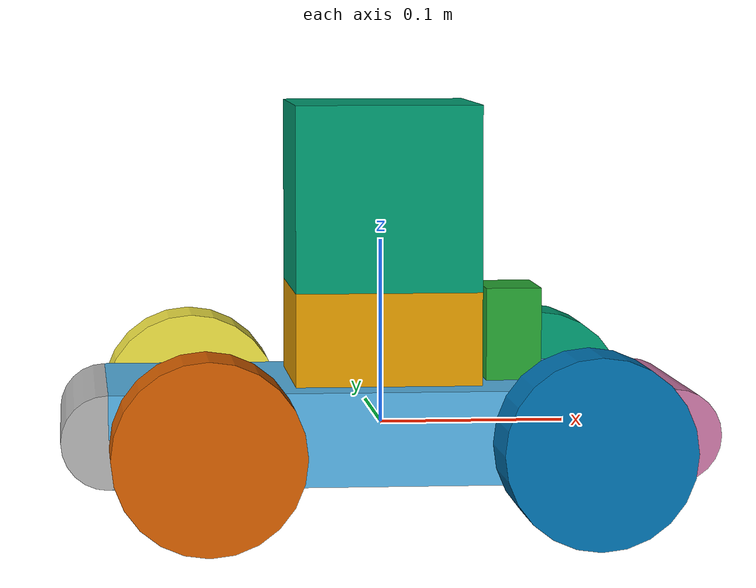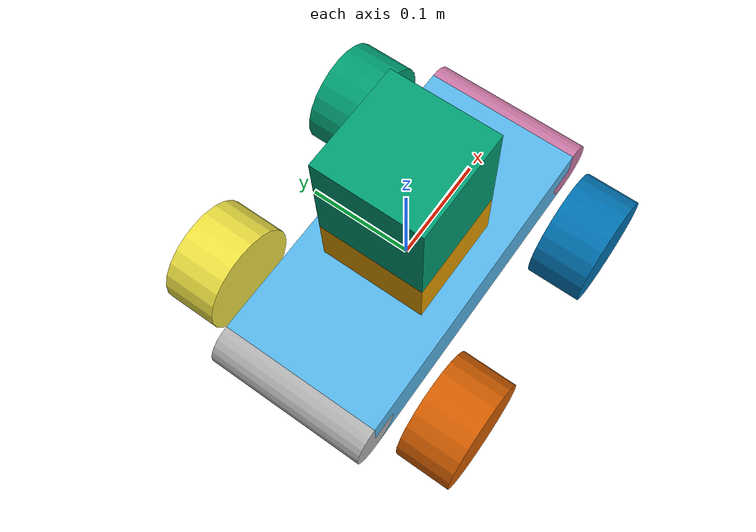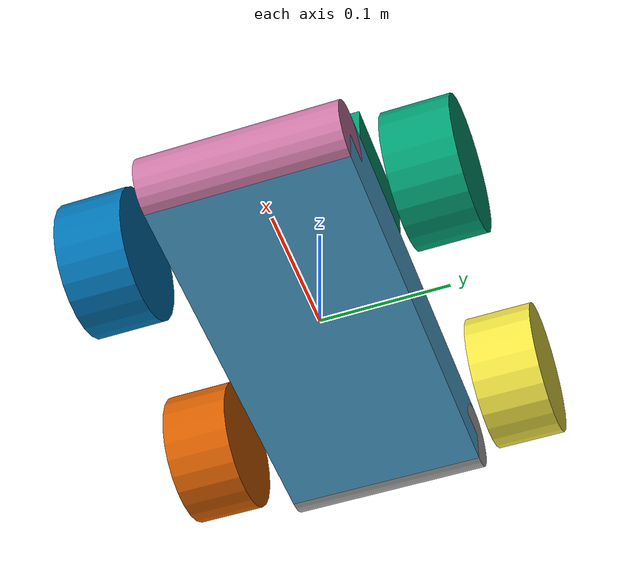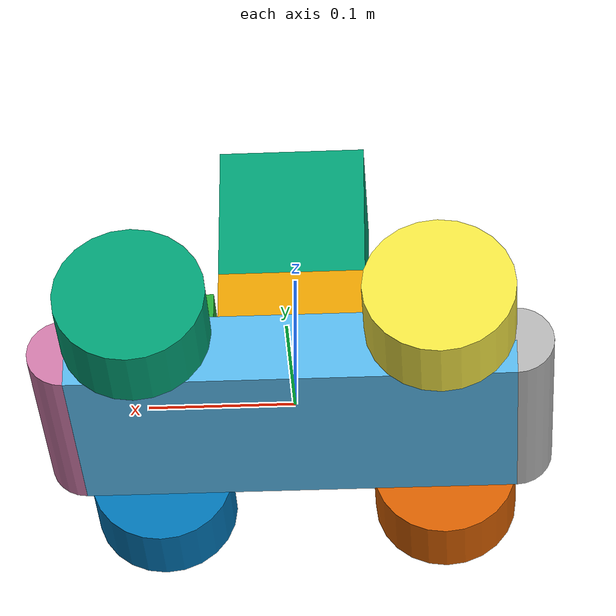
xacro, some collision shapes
<?xml version='1.0'?>

<robot name="new_robot" xmlns:xacro="http://www.ros.org/wiki/xacro">

  <xacro:include filename="$(find where_am_i)/urdf/new_robot.gazebo" />

  <link name="robot_footprint"></link>

  <joint name="robot_footprint_joint" type="fixed">

    <origin xyz="0 0 0" rpy="0 0 0" />

    <parent link="robot_footprint"/>

    <child link="chassis" />

  </joint>

  <link name='chassis'>

    <pose>0 0 0.05 0 0 0</pose>

    <inertial>

      <mass value="18.0"/>

      <origin xyz="0.0 0 0" rpy=" 0 0 0"/>

      <inertia

          ixx="0.021" ixy="0" ixz="0"

          iyy="0.076" iyz="0"

          izz="0.093"

      />

    </inertial>

    <collision name='collision'>

      <origin xyz="0 0 0" rpy=" 0 0 0"/>

      <geometry>

        <box size="0.3 0.15 0.05"/>

      </geometry>

    </collision>

    <visual name='chassis_visual'>

      <origin xyz="0 0 0" rpy=" 0 0 0"/>

      <geometry>

        <box size="0.3 0.15 0.05"/>

      </geometry>

    </visual>

  </link>

  <link name="front_left_wheel">

      <inertial>

          <origin xyz="0.0 0.0 0.0" rpy="0.0 1.5707 1.5707"/>

          <mass value="4.0"/>

          <inertia ixx="0.1" ixy="0.0" ixz="0.0" iyy="0.1" iyz="0.0" izz="0.1"/>

      </inertial>

      <visual name="front_left_wheel_visual">

          <origin xyz="0.0 0.0 0.0" rpy="0.0 1.5707 1.5707"/>

          <geometry>

              <cylinder radius="0.05" length="0.05"/>

          </geometry>

      </visual>

      <collision>

          <origin xyz="0.0 0.0 0.0" rpy="0.0 1.5707 1.5707"/>

          <geometry>

              <cylinder radius="0.05" length="0.05"/>

          </geometry>

       <surface>
        <friction>
          <fdir1>1 0 0</fdir1>
          <kp>1000000.0</kp> <!-- kp and kd for rubber -->
          <kd>100.0</kd>
          <mu>1</mu>
          <mu2>1</mu2>
          <slip1>0.5</slip1>
          <slip2>0</slip2>
        </friction>
      </surface>

      </collision>

  </link>

  <joint type="continuous" name="front_left_wheel_hinge">

    <origin xyz="0.1 0.12 0" rpy="0 0 0"/>

    <child link="front_left_wheel"/>

    <parent link="chassis"/>

    <axis xyz="0 1 0" rpy="0 0 0"/>

    <limit effort="10000" velocity="1000"/>

    <dynamics damping="1.0" friction="1.0"/>

  </joint>

  <link name="back_left_wheel">

      <inertial>

          <origin xyz="0.0 0.0 0.0" rpy="0.0 1.5707 1.5707"/>

          <mass value="4.0"/>

          <inertia ixx="0.1" ixy="0.0" ixz="0.0" iyy="0.1" iyz="0.0" izz="0.1"/>

      </inertial>

      <visual name="back_left_wheel_visual">

          <origin xyz="0.0 0.0 0.0" rpy="0.0 1.5707 1.5707"/>

          <geometry>

              <cylinder radius="0.05" length="0.05"/>

          </geometry>

      </visual>

      <collision>

          <origin xyz="0.0 0.0 0.0" rpy="0.0 1.5707 1.5707"/>

          <geometry>

              <cylinder radius="0.05" length="0.05"/>

          </geometry>

      <surface>
        <friction>
          <fdir1>1 0 0</fdir1>
          <kp>1000000.0</kp> <!-- kp and kd for rubber -->
          <kd>100.0</kd>
          <mu>1</mu>
          <mu2>1</mu2>
          <slip1>0.5</slip1>
          <slip2>0</slip2>
        </friction>
      </surface>

      </collision>

  </link>

  <joint type="continuous" name="back_left_wheel_hinge">

    <origin xyz="-0.1 0.12 0" rpy="0 0 0"/>

    <child link="back_left_wheel"/>

    <parent link="chassis"/>

    <axis xyz="0 1 0" rpy="0 0 0"/>

    <limit effort="10000" velocity="1000"/>

    <dynamics damping="1.0" friction="1.0"/>

  </joint>

  <link name="front_right_wheel">

      <inertial>

          <origin xyz="0.0 0.0 0.0" rpy="0.0 1.5707 1.5707"/>

          <mass value="4.0"/>

          <inertia ixx="0.1" ixy="0.0" ixz="0.0" iyy="0.1" iyz="0.0" izz="0.1"/>

      </inertial>

      <visual name="front_right_wheel_visual">

          <origin xyz="0.0 0.0 0.0" rpy="0.0 1.5707 1.5707"/>

          <geometry>

              <cylinder radius="0.05" length="0.05"/>

          </geometry>

      </visual>

      <collision>

          <origin xyz="0.0 0.0 0.0" rpy="0.0 1.5707 1.5707"/>

          <geometry>

              <cylinder radius="0.05" length="0.05"/>

          </geometry>
      <surface>
        <friction>
          <fdir1>1 0 0</fdir1>
          <kp>1000000.0</kp> <!-- kp and kd for rubber -->
          <kd>100.0</kd>
          <mu>1</mu>
          <mu2>1</mu2>
          <slip1>0.5</slip1>
          <slip2>0</slip2>
        </friction>
      </surface>

      </collision>

  </link>

  <joint type="continuous" name="front_right_wheel_hinge">

    <origin xyz="0.1 -0.12 0" rpy="0 0 0"/>

    <child link="front_right_wheel"/>

    <parent link="chassis"/>

    <axis xyz="0 1 0" rpy="0 0 0"/>

    <limit effort="10000" velocity="1000"/>

    <dynamics damping="1.0" friction="1.0"/>

  </joint>

  <link name="back_right_wheel">

      <inertial>

          <origin xyz="0.0 0.0 0.0" rpy="0.0 1.5707 1.5707"/>

          <mass value="4.0"/>

          <inertia ixx="0.1" ixy="0.0" ixz="0.0" iyy="0.1" iyz="0.0" izz="0.1"/>

      </inertial>

      <visual name="bsck_right_wheel_visual">

          <origin xyz="0.0 0.0 0.0" rpy="0.0 1.5707 1.5707"/>

          <geometry>

              <cylinder radius="0.05" length="0.05"/>

          </geometry>

      </visual>

      <collision>

          <origin xyz="0.0 0.0 0.0" rpy="0.0 1.5707 1.5707"/>

          <geometry>

              <cylinder radius="0.05" length="0.05"/>

          </geometry>

      <surface>
        <friction>
          <fdir1>1 0 0</fdir1>
          <kp>1000000.0</kp> <!-- kp and kd for rubber -->
          <kd>100.0</kd>
          <mu>1</mu>
          <mu2>1</mu2>
          <slip1>0.5</slip1>
          <slip2>0</slip2>
        </friction>
      </surface>

      </collision>

  </link>

  <joint type="continuous" name="back_right_wheel_hinge">

    <origin xyz="-0.1 -0.12 0" rpy="0 0 0"/>

    <child link="back_right_wheel"/>

    <parent link="chassis"/>

    <axis xyz="0 1 0" rpy="0 0 0"/>

    <limit effort="10000" velocity="1000"/>

    <dynamics damping="1.0" friction="1.0"/>

  </joint>

  <joint type="fixed" name="front_bumper_joint">

    <origin xyz=".15 0 0" rpy="0 0 0"/>

    <child link="front_bumper"/>

    <parent link="chassis"/>

  </joint>

    <link name="front_bumper">
      <inertial>
          <origin xyz="0.0 0.0 0.0" rpy="0.0 0.0 0.0"/>
          <mass value="0.3"/>
          <inertia ixx="0.1" ixy="0.0" ixz="0.0" iyy="0.1" iyz="0.0" izz="0.1"/>
      </inertial>
      <visual name="front_bumper_visual">
          <origin xyz="0.0 0.0 0.0" rpy="1.5707 0.0 0.0"/>
          <geometry>
              <cylinder radius="0.025" length="0.15"/>
          </geometry>
      </visual>
      <collision>
          <origin xyz="0.0 0.0 0.0" rpy="1.5707 0.0 0.0"/>
          <geometry>
              <cylinder radius="0.025" length="0.15"/>
          </geometry>
      </collision>
  </link>

    <joint type="fixed" name="back_bumper_joint">

    <origin xyz="-.15 0 0" rpy="0 0 0"/>

    <child link="back_bumper"/>

    <parent link="chassis"/>

  </joint>

    <link name="back_bumper">
      <inertial>
          <origin xyz="0.0 0.0 0.0" rpy="0.0 0.0 0.0"/>
          <mass value="0.3"/>
          <inertia ixx="0.1" ixy="0.0" ixz="0.0" iyy="0.1" iyz="0.0" izz="0.1"/>
      </inertial>
      <visual name="back_bumper_visual">
          <origin xyz="0.0 0.0 0.0" rpy="1.5707 0.0 0.0"/>
          <geometry>
              <cylinder radius="0.025" length="0.15"/>
          </geometry>
      </visual>
      <collision>
          <origin xyz="0.0 0.0 0.0" rpy="1.5707 0.0 0.0"/>
          <geometry>
              <cylinder radius="0.025" length="0.15"/>
          </geometry>
      </collision>
  </link>

  <link name="sensor_holder">
      <inertial>
          <origin xyz="0.0 0.0 0.0" rpy="0.0 0.0 0.0"/>
          <mass value="3"/>
          <inertia ixx="0.1" ixy="0.0" ixz="0.0" iyy="0.1" iyz="0.0" izz="0.1"/>
      </inertial>
      <visual name="sensor_holder_visual">
          <origin xyz="0.0 0.0 0.0" rpy="0.0 0.0 0.0"/>
          <geometry>
              <box size="0.1 0.1 0.05"/>
          </geometry>
      </visual>
      <collision>
          <origin xyz="0.0 0.0 0.0" rpy="0.0 0.0 0.0"/>
          <geometry>
              <box size="0.1 0.1 0.05"/>
          </geometry>
      </collision>
  </link>

  <joint name="sensor_holder_joint" type="fixed">
      <origin xyz="0.0 0.0 0.05" rpy="0.0 0.0 0.0"/>
      <parent link="chassis"/>
      <child link="sensor_holder"/>
  </joint>

  <link name="camera">

      <inertial>

          <origin xyz="0.0 0.0 0.0" rpy="0.0 0.0 0.0"/>

          <mass value="0.1"/>

          <inertia ixx="1e-6" ixy="0.0" ixz="0.0" iyy="1e-6" iyz="0.0" izz="1e-6"/>

      </inertial>

      <visual name="">

          <origin xyz="0.0 0.0 0.0" rpy="0.0 0.0 0.0"/>

          <geometry>

              <box size="0.03 0.05 0.05"/>

          </geometry>

      </visual>

      <collision>

          <origin xyz="0.0 0.0 0.0" rpy="0.0 0.0 0.0"/>

          <geometry>

              <box size="0.03 0.05 0.05"/>

          </geometry>

      </collision>

  </link>

  <joint name="camera_joint" type="fixed">

      <origin xyz="0.07 0.0 0.0" rpy="0.0 0.0 0.0"/>

      <parent link="sensor_holder"/>

      <child link="camera"/>

  </joint>

  <link name="hokuyo">

      <inertial>

          <origin xyz="0.0 0.0 0.0" rpy="0.0 0.0 0.0"/>

          <mass value="0.1"/>

          <inertia ixx="1e-6" ixy="0.0" ixz="0.0" iyy="1e-6" iyz="0.0" izz="1e-6"/>

      </inertial>

      <visual name="hokuyo_visual">

          <origin xyz="0.0 0.0 0.0" rpy="0.0 0.0 0.0"/>

          <geometry>

              <mesh filename="package://where_am_i/meshes/hokuyo.dae" />

          </geometry>

      </visual>

      <collision>

          <origin xyz="0.0 0.0 0.0" rpy="0.0 0.0 0.0"/>

          <geometry>

              <box size="0.1 0.1 0.1"/>

          </geometry>

      </collision>

  </link>

  <joint name="hokuyo_joint" type="fixed">

      <origin xyz="0.0 0.0 0.075" rpy="0.0 0.0 0.0"/>

      <parent link="sensor_holder"/>

      <child link="hokuyo"/>

  </joint>

  </robot>
